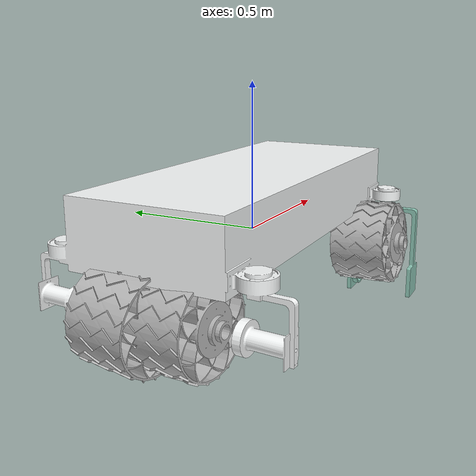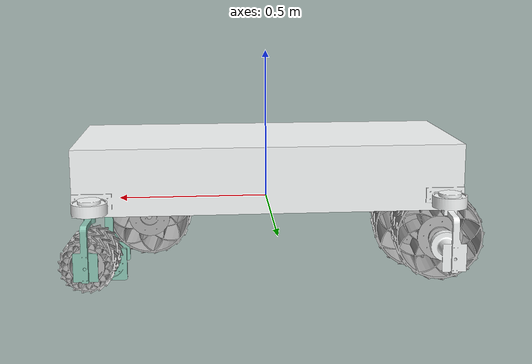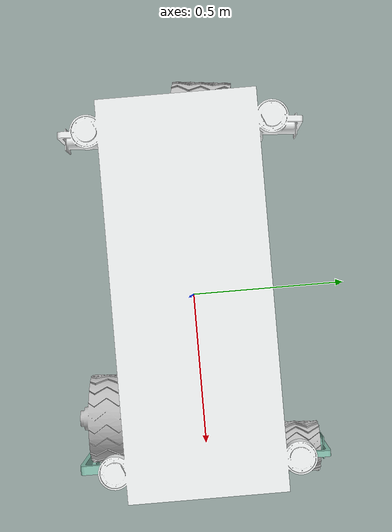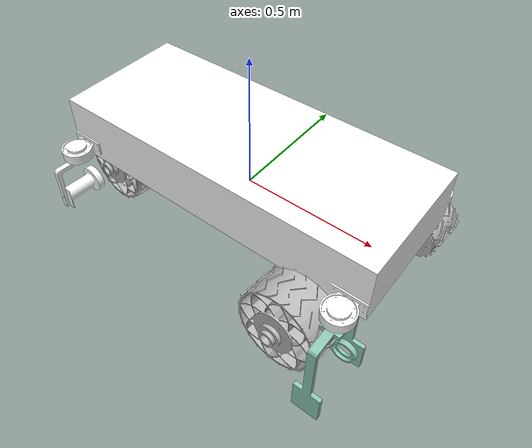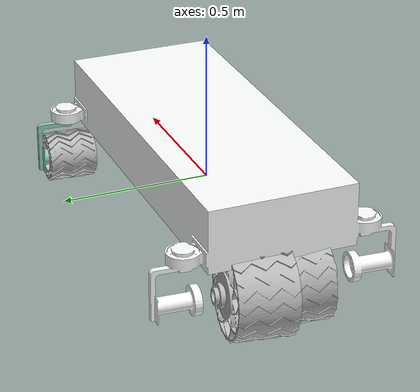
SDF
<sdf version='1.9'>
  <model name='rogue'>
    <link name='base_link'>
      <inertial>
        <pose>-0.00246940894159626 0.1058972543147 5.46494556407368e-17 0 0 0</pose>
        <mass>136.62075409656401</mass>
        <inertia>
          <ixx>3.3220316255082989</ixx>
          <ixy>1.612498825152817e-18</ixy>
          <ixz>8.7403687086753598e-05</ixz>
          <iyy>20.3007194974988</iyy>
          <iyz>3.4410713482206558e-19</iyz>
          <izz>18.017789067119299</izz>
        </inertia>
      </inertial>
      <collision name='base_link_fixed_joint_lump__chassis_link_collision'>
        <pose>0 0 0 0 0 0</pose>
        <geometry>
          <mesh>
            <scale>1 1 1</scale>
            <uri>model://src/rogue/meshes/base_link.stl</uri>
          </mesh>
        </geometry>
      </collision>
      <visual name='base_link_fixed_joint_lump__chassis_link_visual'>
        <pose>0 0 0 0 0 0</pose>
        <geometry>
          <mesh>
            <scale>1 1 1</scale>
            <uri>model://src/rogue/meshes/base_link.stl</uri>
          </mesh>
        </geometry>
        <material>
          <diffuse>0.990196 1 1 1</diffuse>
          <ambient>0.990196 1 1 1</ambient>
        </material>
      </visual>
    </link>
    <joint name='Driving_Left' type='revolute'>
      <pose relative_to='base_link'>-0.56821 0.2102 -0.1145 -2.0317 -0.02650799999999997 1.4579</pose>
      <parent>base_link</parent>
      <child>Driving_Left_Link</child>
      <axis>
        <xyz>0.99823 0 0.059504</xyz>
        <limit>
          <effort>0</effort>
          <velocity>4.0499999999999998</velocity>
          <lower>-10000000000000000</lower>
          <upper>10000000000000000</upper>
        </limit>
        <dynamics>
          <spring_reference>0</spring_reference>
          <spring_stiffness>0</spring_stiffness>
        </dynamics>
      </axis>
    </joint>
    <link name='Driving_Left_Link'>
      <pose relative_to='Driving_Left'>0 0 0 0 0 0</pose>
      <inertial>
        <pose>0.07754900000000001 -3.9273e-06 0.0045857 0 0 0</pose>
        <mass>1.3904000000000001</mass>
        <inertia>
          <ixx>0.0050442999999999998</ixx>
          <ixy>6.6680000000000002e-07</ixy>
          <ixz>3.1856000000000001e-05</ixz>
          <iyy>0.0045117000000000004</iyy>
          <iyz>-2.2280999999999999e-07</iyz>
          <izz>0.0045120999999999998</izz>
        </inertia>
      </inertial>
      <collision name='Driving_Left_Link_collision'>
        <pose>0 0 0 0 0 0</pose>
        <geometry>
          <mesh>
            <scale>1 1 1</scale>
            <uri>model://src/rogue/meshes/Driving_Left_Link.stl</uri>
          </mesh>
        </geometry>
      </collision>
      <visual name='Driving_Left_Link_visual'>
        <pose>0 0 0 0 0 0</pose>
        <geometry>
          <mesh>
            <scale>1 1 1</scale>
            <uri>model://src/rogue/meshes/Driving_Left_Link.stl</uri>
          </mesh>
        </geometry>
      </visual>
    </link>
    <joint name='Driving_Right' type='revolute'>
      <pose relative_to='base_link'>-0.55679 -0.2102 -0.1145 -2.0317 -0.02650800000000015 -1.6837</pose>
      <parent>base_link</parent>
      <child>Driving_Right_Link</child>
      <axis>
        <xyz>0.99823 0 0.059504</xyz>
        <limit>
          <effort>0</effort>
          <velocity>4.0499999999999998</velocity>
          <lower>-10000000000000000</lower>
          <upper>10000000000000000</upper>
        </limit>
        <dynamics>
          <spring_reference>0</spring_reference>
          <spring_stiffness>0</spring_stiffness>
        </dynamics>
      </axis>
    </joint>
    <link name='Driving_Right_Link'>
      <pose relative_to='Driving_Right'>0 0 0 0 0 0</pose>
      <inertial>
        <pose>0.07754900000000001 -3.9273e-06 0.0045857 0 0 0</pose>
        <mass>1.3904000000000001</mass>
        <inertia>
          <ixx>0.0050442999999999998</ixx>
          <ixy>6.6680000000000002e-07</ixy>
          <ixz>3.1856000000000001e-05</ixz>
          <iyy>0.0045117000000000004</iyy>
          <iyz>-2.2280999999999999e-07</iyz>
          <izz>0.0045120999999999998</izz>
        </inertia>
      </inertial>
      <collision name='Driving_Right_Link_collision'>
        <pose>0 0 0 0 0 0</pose>
        <geometry>
          <mesh>
            <scale>1 1 1</scale>
            <uri>model://src/rogue/meshes/Driving_Right_Link.stl</uri>
          </mesh>
        </geometry>
      </collision>
      <visual name='Driving_Right_Link_visual'>
        <pose>0 0 0 0 0 0</pose>
        <geometry>
          <mesh>
            <scale>1 1 1</scale>
            <uri>model://src/rogue/meshes/Driving_Right_Link.stl</uri>
          </mesh>
        </geometry>
      </visual>
    </link>
    <joint name='Steering_Front_Left' type='revolute'>
      <pose relative_to='base_link'>0.5625 0.306 0 1.5708 6.617616357922041e-17 1.568</pose>
      <parent>base_link</parent>
      <child>Steering_Front_Left_Link</child>
      <axis>
        <xyz>0 1 0</xyz>
        <limit>
          <effort>0</effort>
          <velocity>4.0499999999999998</velocity>
          <lower>-10000000000000000</lower>
          <upper>10000000000000000</upper>
        </limit>
        <dynamics>
          <spring_reference>0</spring_reference>
          <spring_stiffness>0</spring_stiffness>
        </dynamics>
      </axis>
    </joint>
    <link name='Steering_Front_Left_Link'>
      <pose relative_to='Steering_Front_Left'>0 0 0 0 0 0</pose>
      <inertial>
        <pose>0.0265509625988199 -0.0902801904129602 0.00150839438422112 0 0 0</pose>
        <mass>0.29176405298994601</mass>
        <inertia>
          <ixx>0.00089740069561132702</ixx>
          <ixy>-0.00018186487322156901</ixy>
          <ixz>-4.0471931325246997e-05</ixz>
          <iyy>0.00096413714200060301</iyy>
          <iyz>-1.0331977698871e-05</iyz>
          <izz>0.0016074938591811099</izz>
        </inertia>
      </inertial>
      <collision name='Steering_Front_Left_Link_collision'>
        <pose>0 0 0 0 0 0</pose>
        <geometry>
          <mesh>
            <scale>1 1 1</scale>
            <uri>model://src/rogue/meshes/Steering_Front_Left_Link.stl</uri>
          </mesh>
        </geometry>
      </collision>
      <visual name='Steering_Front_Left_Link_visual'>
        <pose>0 0 0 0 0 0</pose>
        <geometry>
          <mesh>
            <scale>1 1 1</scale>
            <uri>model://src/rogue/meshes/Steering_Front_Left_Link.stl</uri>
          </mesh>
        </geometry>
        <material>
          <diffuse>0.553922 0.779412 0.710784 1</diffuse>
          <ambient>0.553922 0.779412 0.710784 1</ambient>
        </material>
      </visual>
    </link>
    <joint name='Driving_Front_Left' type='revolute'>
      <pose relative_to='Steering_Front_Left_Link'>0 -0.1145 0 1.1343 -0.03163900000000001 0.054039</pose>
      <parent>Steering_Front_Left_Link</parent>
      <child>Driving_Front_Left_Link</child>
      <axis>
        <xyz>0.99823 0 0.059504</xyz>
        <limit>
          <effort>0</effort>
          <velocity>4.0499999999999998</velocity>
          <lower>-10000000000000000</lower>
          <upper>10000000000000000</upper>
        </limit>
        <dynamics>
          <spring_reference>0</spring_reference>
          <spring_stiffness>0</spring_stiffness>
        </dynamics>
      </axis>
    </joint>
    <link name='Driving_Front_Left_Link'>
      <pose relative_to='Driving_Front_Left'>0 0 0 0 0 0</pose>
      <inertial>
        <pose>-0.0182564505721252 -3.92727932868597e-06 -0.00112517178645061 0 0 0</pose>
        <mass>1.39036444547767</mass>
        <inertia>
          <ixx>0.0050443162760889599</ixx>
          <ixy>6.6680258893282402e-07</ixy>
          <ixz>3.1855592789663397e-05</ixz>
          <iyy>0.0045116702622894304</iyy>
          <iyz>-2.2281361703233399e-07</iyz>
          <izz>0.0045121360037838404</izz>
        </inertia>
      </inertial>
      <collision name='Driving_Front_Left_Link_collision'>
        <pose>0 0 0 0 0 0</pose>
        <geometry>
          <mesh>
            <scale>1 1 1</scale>
            <uri>model://src/rogue/meshes/Driving_Front_Left_Link.stl</uri>
          </mesh>
        </geometry>
      </collision>
      <visual name='Driving_Front_Left_Link_visual'>
        <pose>0 0 0 0 0 0</pose>
        <geometry>
          <mesh>
            <scale>1 1 1</scale>
            <uri>model://src/rogue/meshes/Driving_Front_Left_Link.stl</uri>
          </mesh>
        </geometry>
      </visual>
    </link>
    <joint name='Steering_Front_Right' type='revolute'>
      <pose relative_to='base_link'>0.5625 -0.306 0 1.5708 2.084494723288561e-17 -1.5736</pose>
      <parent>base_link</parent>
      <child>Steering_Front_Right_Link</child>
      <axis>
        <xyz>0 1 0</xyz>
        <limit>
          <effort>0</effort>
          <velocity>4.0499999999999998</velocity>
          <lower>-10000000000000000</lower>
          <upper>10000000000000000</upper>
        </limit>
        <dynamics>
          <spring_reference>0</spring_reference>
          <spring_stiffness>0</spring_stiffness>
        </dynamics>
      </axis>
    </joint>
    <link name='Steering_Front_Right_Link'>
      <pose relative_to='Steering_Front_Right'>0 0 0 0 0 0</pose>
      <inertial>
        <pose>0.0265509625988167 -0.09028019041296741 0.00150839438421835 0 0 0</pose>
        <mass>0.29176405298994701</mass>
        <inertia>
          <ixx>0.00089740069561132399</ixx>
          <ixy>-0.00018186487322157001</ixy>
          <ixz>-4.0471931325215602e-05</ixz>
          <iyy>0.00096413714200060399</iyy>
          <iyz>-1.03319776988643e-05</iyz>
          <izz>0.0016074938591811099</izz>
        </inertia>
      </inertial>
      <collision name='Steering_Front_Right_Link_collision'>
        <pose>0 0 0 0 0 0</pose>
        <geometry>
          <mesh>
            <scale>1 1 1</scale>
            <uri>model://src/rogue/meshes/Steering_Front_Right_Link.stl</uri>
          </mesh>
        </geometry>
      </collision>
      <visual name='Steering_Front_Right_Link_visual'>
        <pose>0 0 0 0 0 0</pose>
        <geometry>
          <mesh>
            <scale>1 1 1</scale>
            <uri>model://src/rogue/meshes/Steering_Front_Right_Link.stl</uri>
          </mesh>
        </geometry>
        <material>
          <diffuse>0.553922 0.779412 0.710784 1</diffuse>
          <ambient>0.553922 0.779412 0.710784 1</ambient>
        </material>
      </visual>
    </link>
    <joint name='Driving_Front_Right' type='revolute'>
      <pose relative_to='Steering_Front_Right_Link'>0 -0.1145 0 1.5327 -0.05458300000000001 0.059592</pose>
      <parent>Steering_Front_Right_Link</parent>
      <child>Driving_Front_Right_Link</child>
      <axis>
        <xyz>0.99823 0 0.059504</xyz>
        <limit>
          <effort>0</effort>
          <velocity>4.0499999999999998</velocity>
          <lower>-10000000000000000</lower>
          <upper>10000000000000000</upper>
        </limit>
        <dynamics>
          <spring_reference>0</spring_reference>
          <spring_stiffness>0</spring_stiffness>
        </dynamics>
      </axis>
    </joint>
    <link name='Driving_Front_Right_Link'>
      <pose relative_to='Driving_Front_Right'>0 0 0 0 0 0</pose>
      <inertial>
        <pose>-0.0182564505721275 -3.92727933196113e-06 -0.00112517178645236 0 0 0</pose>
        <mass>1.39036444547767</mass>
        <inertia>
          <ixx>0.00504431627608894</ixx>
          <ixy>6.6680258889559502e-07</ixy>
          <ixz>3.1855592789679701e-05</ixz>
          <iyy>0.0045116702622894399</iyy>
          <iyz>-2.22813616974866e-07</iyz>
          <izz>0.00451213600378381</izz>
        </inertia>
      </inertial>
      <collision name='Driving_Front_Right_Link_collision'>
        <pose>0 0 0 0 0 0</pose>
        <geometry>
          <mesh>
            <scale>1 1 1</scale>
            <uri>model://src/rogue/meshes/Driving_Front_Right_Link.stl</uri>
          </mesh>
        </geometry>
      </collision>
      <visual name='Driving_Front_Right_Link_visual'>
        <pose>0 0 0 0 0 0</pose>
        <geometry>
          <mesh>
            <scale>1 1 1</scale>
            <uri>model://src/rogue/meshes/Driving_Front_Right_Link.stl</uri>
          </mesh>
        </geometry>
      </visual>
    </link>
    <frame name='base_joint' attached_to='base_link'>
      <pose>0 0 0 0 -0 0</pose>
    </frame>
    <frame name='chassis_link' attached_to='base_joint'/>
  </model>
</sdf>
